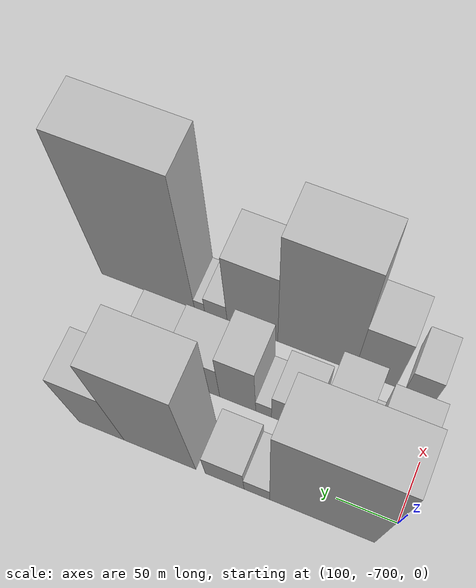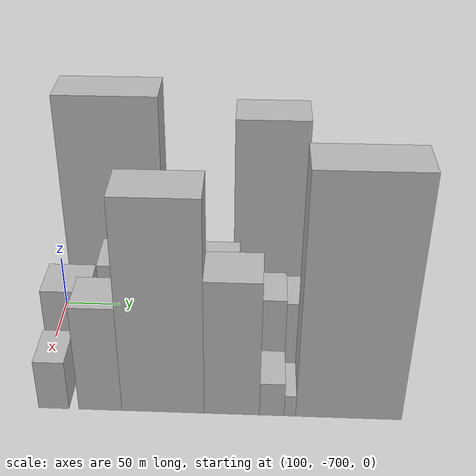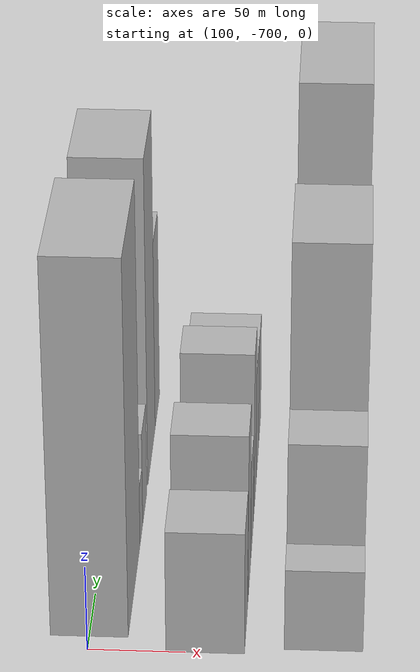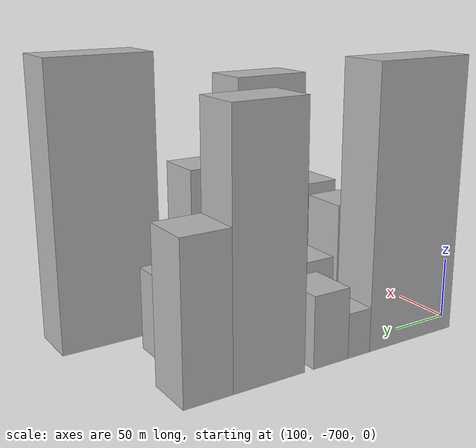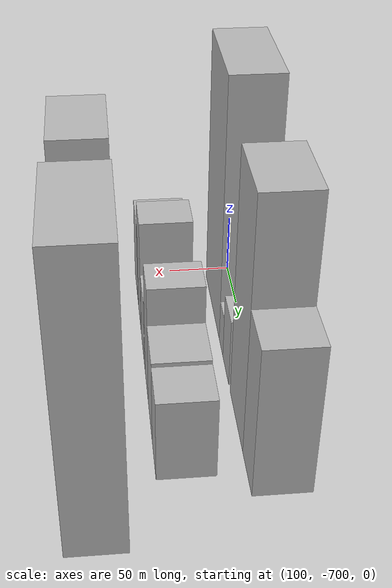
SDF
<sdf version="1.6">
 <world name="default">
  <model name="building_9">
   <static>1</static>
   <pose>100.0000 -645.8615 0 0.000000 0.000000 0.000000</pose>
   <link name="link">
    <pose>0 0 109.50 0 0 0</pose>
    <collision name="collision"><geometry><box><size>40.0000 84.9446 219.0000</size></box></geometry></collision>
    <visual name="visual">
     <cast_shadows>0</cast_shadows>
     <geometry><box><size>40.0000 84.9446 219.0000</size></box></geometry>
     <material>
      <script>
       <uri>model://HANNAS_wall/materials/scripts</uri>
       <uri>model://HANNAS_wall/materials/textures</uri>
       <name>vrc/HANNAS_wall</name>
      </script>
     </material>
    </visual>
   </link>
  </model>
  <model name="building_10">
   <static>1</static>
   <pose>100.0000 -592.8607 0 0.000000 0.000000 0.000000</pose>
   <link name="link">
    <pose>0 0 18.00 0 0 0</pose>
    <collision name="collision"><geometry><box><size>40.0000 21.0570 36.0000</size></box></geometry></collision>
    <visual name="visual">
     <cast_shadows>0</cast_shadows>
     <geometry><box><size>40.0000 21.0570 36.0000</size></box></geometry>
     <material>
      <script>
       <uri>model://HANNAS_wall/materials/scripts</uri>
       <uri>model://HANNAS_wall/materials/textures</uri>
       <name>vrc/HANNAS_wall</name>
      </script>
     </material>
    </visual>
   </link>
  </model>
  <model name="building_11">
   <static>1</static>
   <pose>100.0000 -566.2686 0 0.000000 0.000000 0.000000</pose>
   <link name="link">
    <pose>0 0 28.50 0 0 0</pose>
    <collision name="collision"><geometry><box><size>40.0000 32.1273 57.0000</size></box></geometry></collision>
    <visual name="visual">
     <cast_shadows>0</cast_shadows>
     <geometry><box><size>40.0000 32.1273 57.0000</size></box></geometry>
     <material>
      <script>
       <uri>model://HANNAS_wall/materials/scripts</uri>
       <uri>model://HANNAS_wall/materials/textures</uri>
       <name>vrc/HANNAS_wall</name>
      </script>
     </material>
    </visual>
   </link>
  </model>
  <model name="building_12">
   <static>1</static>
   <pose>100.0000 -511.8463 0 0.000000 0.000000 0.000000</pose>
   <link name="link">
    <pose>0 0 100.50 0 0 0</pose>
    <collision name="collision"><geometry><box><size>40.0000 60.7174 201.0000</size></box></geometry></collision>
    <visual name="visual">
     <cast_shadows>0</cast_shadows>
     <geometry><box><size>40.0000 60.7174 201.0000</size></box></geometry>
     <material>
      <script>
       <uri>model://HANNAS_wall/materials/scripts</uri>
       <uri>model://HANNAS_wall/materials/textures</uri>
       <name>vrc/HANNAS_wall</name>
      </script>
     </material>
    </visual>
   </link>
  </model>
  <model name="building_13">
   <static>1</static>
   <pose>100.0000 -462.0579 0 0.000000 0.000000 0.000000</pose>
   <link name="link">
    <pose>0 0 60.00 0 0 0</pose>
    <collision name="collision"><geometry><box><size>40.0000 38.8594 120.0000</size></box></geometry></collision>
    <visual name="visual">
     <cast_shadows>0</cast_shadows>
     <geometry><box><size>40.0000 38.8594 120.0000</size></box></geometry>
     <material>
      <script>
       <uri>model://HANNAS_wall/materials/scripts</uri>
       <uri>model://HANNAS_wall/materials/textures</uri>
       <name>vrc/HANNAS_wall</name>
      </script>
     </material>
    </visual>
   </link>
  </model>
  <model name="building_63">
   <static>1</static>
   <pose>160.0000 -679.9640 0 0.000000 0.000000 0.000000</pose>
   <link name="link">
    <pose>0 0 36.00 0 0 0</pose>
    <collision name="collision"><geometry><box><size>40.0000 40.1491 72.0000</size></box></geometry></collision>
    <visual name="visual">
     <cast_shadows>0</cast_shadows>
     <geometry><box><size>40.0000 40.1491 72.0000</size></box></geometry>
     <material>
      <script>
       <uri>model://HANNAS_wall/materials/scripts</uri>
       <uri>model://HANNAS_wall/materials/textures</uri>
       <name>vrc/HANNAS_wall</name>
      </script>
     </material>
    </visual>
   </link>
  </model>
  <model name="building_64">
   <static>1</static>
   <pose>160.0000 -655.5191 0 0.000000 0.000000 0.000000</pose>
   <link name="link">
    <pose>0 0 9.00 0 0 0</pose>
    <collision name="collision"><geometry><box><size>40.0000 8.7407 18.0000</size></box></geometry></collision>
    <visual name="visual">
     <cast_shadows>0</cast_shadows>
     <geometry><box><size>40.0000 8.7407 18.0000</size></box></geometry>
     <material>
      <script>
       <uri>model://HANNAS_wall/materials/scripts</uri>
       <uri>model://HANNAS_wall/materials/textures</uri>
       <name>vrc/HANNAS_wall</name>
      </script>
     </material>
    </visual>
   </link>
  </model>
  <model name="building_65">
   <static>1</static>
   <pose>160.0000 -634.7600 0 0.000000 0.000000 0.000000</pose>
   <link name="link">
    <pose>0 0 49.50 0 0 0</pose>
    <collision name="collision"><geometry><box><size>40.0000 32.7775 99.0000</size></box></geometry></collision>
    <visual name="visual">
     <cast_shadows>0</cast_shadows>
     <geometry><box><size>40.0000 32.7775 99.0000</size></box></geometry>
     <material>
      <script>
       <uri>model://HANNAS_wall/materials/scripts</uri>
       <uri>model://HANNAS_wall/materials/textures</uri>
       <name>vrc/HANNAS_wall</name>
      </script>
     </material>
    </visual>
   </link>
  </model>
  <model name="building_66">
   <static>1</static>
   <pose>160.0000 -597.4583 0 0.000000 0.000000 0.000000</pose>
   <link name="link">
    <pose>0 0 28.50 0 0 0</pose>
    <collision name="collision"><geometry><box><size>40.0000 33.8259 57.0000</size></box></geometry></collision>
    <visual name="visual">
     <cast_shadows>0</cast_shadows>
     <geometry><box><size>40.0000 33.8259 57.0000</size></box></geometry>
     <material>
      <script>
       <uri>model://HANNAS_wall/materials/scripts</uri>
       <uri>model://HANNAS_wall/materials/textures</uri>
       <name>vrc/HANNAS_wall</name>
      </script>
     </material>
    </visual>
   </link>
  </model>
  <model name="building_67">
   <static>1</static>
   <pose>160.0000 -573.9164 0 0.000000 0.000000 0.000000</pose>
   <link name="link">
    <pose>0 0 13.50 0 0 0</pose>
    <collision name="collision"><geometry><box><size>40.0000 13.2579 27.0000</size></box></geometry></collision>
    <visual name="visual">
     <cast_shadows>0</cast_shadows>
     <geometry><box><size>40.0000 13.2579 27.0000</size></box></geometry>
     <material>
      <script>
       <uri>model://HANNAS_wall/materials/scripts</uri>
       <uri>model://HANNAS_wall/materials/textures</uri>
       <name>vrc/HANNAS_wall</name>
      </script>
     </material>
    </visual>
   </link>
  </model>
  <model name="building_68">
   <static>1</static>
   <pose>160.0000 -551.9652 0 0.000000 0.000000 0.000000</pose>
   <link name="link">
    <pose>0 0 49.50 0 0 0</pose>
    <collision name="collision"><geometry><box><size>40.0000 30.6444 99.0000</size></box></geometry></collision>
    <visual name="visual">
     <cast_shadows>0</cast_shadows>
     <geometry><box><size>40.0000 30.6444 99.0000</size></box></geometry>
     <material>
      <script>
       <uri>model://HANNAS_wall/materials/scripts</uri>
       <uri>model://HANNAS_wall/materials/textures</uri>
       <name>vrc/HANNAS_wall</name>
      </script>
     </material>
    </visual>
   </link>
  </model>
  <model name="building_69">
   <static>1</static>
   <pose>160.0000 -516.7178 0 0.000000 0.000000 0.000000</pose>
   <link name="link">
    <pose>0 0 34.50 0 0 0</pose>
    <collision name="collision"><geometry><box><size>40.0000 39.8505 69.0000</size></box></geometry></collision>
    <visual name="visual">
     <cast_shadows>0</cast_shadows>
     <geometry><box><size>40.0000 39.8505 69.0000</size></box></geometry>
     <material>
      <script>
       <uri>model://HANNAS_wall/materials/scripts</uri>
       <uri>model://HANNAS_wall/materials/textures</uri>
       <name>vrc/HANNAS_wall</name>
      </script>
     </material>
    </visual>
   </link>
  </model>
  <model name="building_70">
   <static>1</static>
   <pose>160.0000 -479.3615 0 0.000000 0.000000 0.000000</pose>
   <link name="link">
    <pose>0 0 33.00 0 0 0</pose>
    <collision name="collision"><geometry><box><size>40.0000 34.8621 66.0000</size></box></geometry></collision>
    <visual name="visual">
     <cast_shadows>0</cast_shadows>
     <geometry><box><size>40.0000 34.8621 66.0000</size></box></geometry>
     <material>
      <script>
       <uri>model://HANNAS_wall/materials/scripts</uri>
       <uri>model://HANNAS_wall/materials/textures</uri>
       <name>vrc/HANNAS_wall</name>
      </script>
     </material>
    </visual>
   </link>
  </model>
  <model name="building_116">
   <static>1</static>
   <pose>220.0000 -682.9379 0 0.000000 0.000000 0.000000</pose>
   <link name="link">
    <pose>0 0 24.00 0 0 0</pose>
    <collision name="collision"><geometry><box><size>40.0000 24.5972 48.0000</size></box></geometry></collision>
    <visual name="visual">
     <cast_shadows>0</cast_shadows>
     <geometry><box><size>40.0000 24.5972 48.0000</size></box></geometry>
     <material>
      <script>
       <uri>model://HANNAS_wall/materials/scripts</uri>
       <uri>model://HANNAS_wall/materials/textures</uri>
       <name>vrc/HANNAS_wall</name>
      </script>
     </material>
    </visual>
   </link>
  </model>
  <model name="building_117">
   <static>1</static>
   <pose>220.0000 -645.2864 0 0.000000 0.000000 0.000000</pose>
   <link name="link">
    <pose>0 0 51.00 0 0 0</pose>
    <collision name="collision"><geometry><box><size>40.0000 34.7057 102.0000</size></box></geometry></collision>
    <visual name="visual">
     <cast_shadows>0</cast_shadows>
     <geometry><box><size>40.0000 34.7057 102.0000</size></box></geometry>
     <material>
      <script>
       <uri>model://HANNAS_wall/materials/scripts</uri>
       <uri>model://HANNAS_wall/materials/textures</uri>
       <name>vrc/HANNAS_wall</name>
      </script>
     </material>
    </visual>
   </link>
  </model>
  <model name="building_118">
   <static>1</static>
   <pose>220.0000 -594.8262 0 0.000000 0.000000 0.000000</pose>
   <link name="link">
    <pose>0 0 99.00 0 0 0</pose>
    <collision name="collision"><geometry><box><size>40.0000 66.2147 198.0000</size></box></geometry></collision>
    <visual name="visual">
     <cast_shadows>0</cast_shadows>
     <geometry><box><size>40.0000 66.2147 198.0000</size></box></geometry>
     <material>
      <script>
       <uri>model://HANNAS_wall/materials/scripts</uri>
       <uri>model://HANNAS_wall/materials/textures</uri>
       <name>vrc/HANNAS_wall</name>
      </script>
     </material>
    </visual>
   </link>
  </model>
  <model name="building_119">
   <static>1</static>
   <pose>220.0000 -539.6814 0 0.000000 0.000000 0.000000</pose>
   <link name="link">
    <pose>0 0 64.50 0 0 0</pose>
    <collision name="collision"><geometry><box><size>40.0000 44.0747 129.0000</size></box></geometry></collision>
    <visual name="visual">
     <cast_shadows>0</cast_shadows>
     <geometry><box><size>40.0000 44.0747 129.0000</size></box></geometry>
     <material>
      <script>
       <uri>model://HANNAS_wall/materials/scripts</uri>
       <uri>model://HANNAS_wall/materials/textures</uri>
       <name>vrc/HANNAS_wall</name>
      </script>
     </material>
    </visual>
   </link>
  </model>
  <model name="building_120">
   <static>1</static>
   <pose>220.0000 -507.7807 0 0.000000 0.000000 0.000000</pose>
   <link name="link">
    <pose>0 0 16.50 0 0 0</pose>
    <collision name="collision"><geometry><box><size>40.0000 19.7268 33.0000</size></box></geometry></collision>
    <visual name="visual">
     <cast_shadows>0</cast_shadows>
     <geometry><box><size>40.0000 19.7268 33.0000</size></box></geometry>
     <material>
      <script>
       <uri>model://HANNAS_wall/materials/scripts</uri>
       <uri>model://HANNAS_wall/materials/textures</uri>
       <name>vrc/HANNAS_wall</name>
      </script>
     </material>
    </visual>
   </link>
  </model>
  <model name="building_121">
   <static>1</static>
   <pose>220.0000 -493.3393 0 0.000000 0.000000 0.000000</pose>
   <link name="link">
    <pose>0 0 10.50 0 0 0</pose>
    <collision name="collision"><geometry><box><size>40.0000 9.1559 21.0000</size></box></geometry></collision>
    <visual name="visual">
     <cast_shadows>0</cast_shadows>
     <geometry><box><size>40.0000 9.1559 21.0000</size></box></geometry>
     <material>
      <script>
       <uri>model://HANNAS_wall/materials/scripts</uri>
       <uri>model://HANNAS_wall/materials/textures</uri>
       <name>vrc/HANNAS_wall</name>
      </script>
     </material>
    </visual>
   </link>
  </model>
  <model name="building_122">
   <static>1</static>
   <pose>220.0000 -446.8748 0 0.000000 0.000000 0.000000</pose>
   <link name="link">
    <pose>0 0 111.00 0 0 0</pose>
    <collision name="collision"><geometry><box><size>40.0000 83.7732 222.0000</size></box></geometry></collision>
    <visual name="visual">
     <cast_shadows>0</cast_shadows>
     <geometry><box><size>40.0000 83.7732 222.0000</size></box></geometry>
     <material>
      <script>
       <uri>model://HANNAS_wall/materials/scripts</uri>
       <uri>model://HANNAS_wall/materials/textures</uri>
       <name>vrc/HANNAS_wall</name>
      </script>
     </material>
    </visual>
   </link>
  </model>
 </world>
</sdf>
